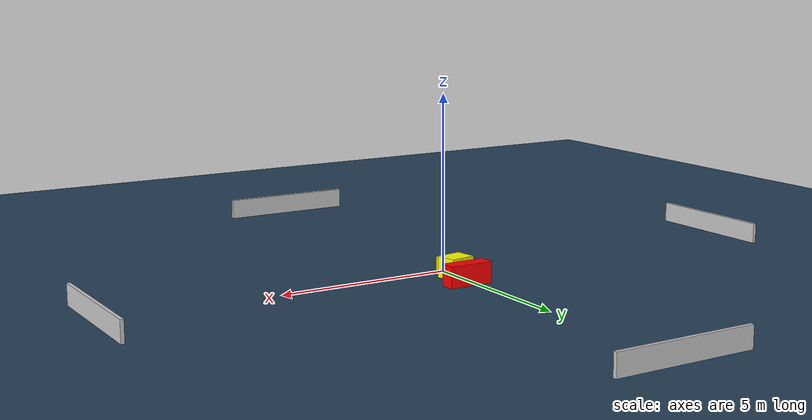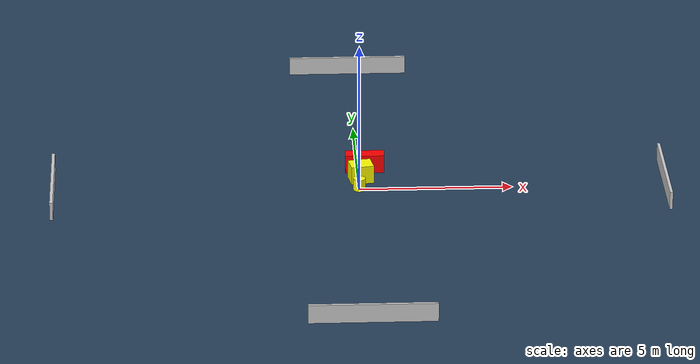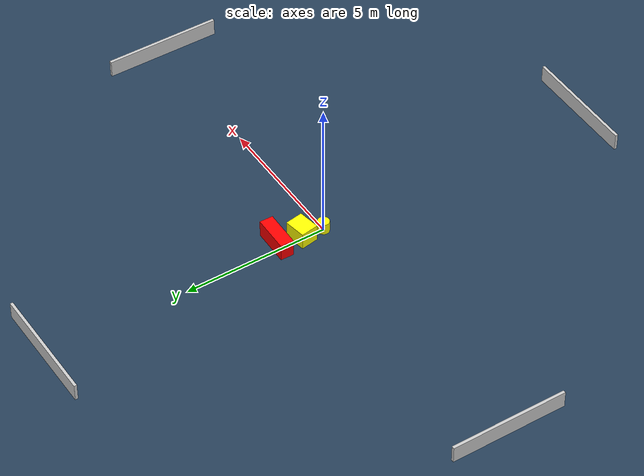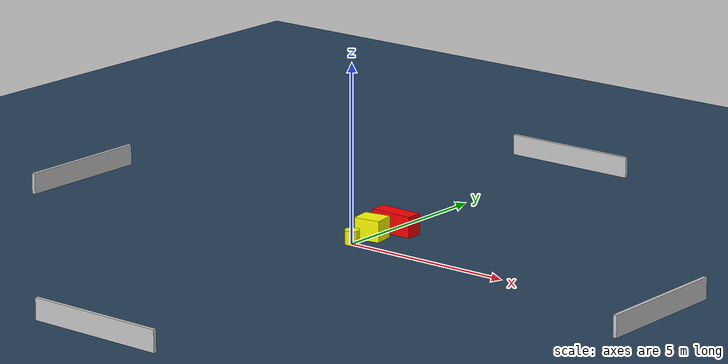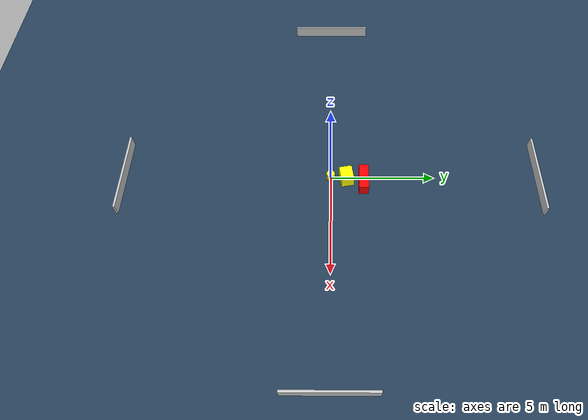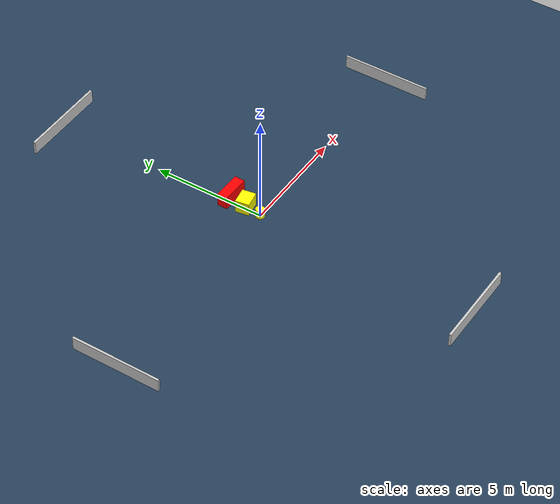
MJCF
<?xml version="1.0" ?>
<mujoco model="generated_environment">
  <option timestep="0.01" integrator="RK4" cone="elliptic"/>
  <default>
    <geom density="1"/>
  </default>
  <asset>
    <texture builtin="gradient" height="3072" name="skybox" rgb1="0.3 0.5 0.7" rgb2="0 0 0" type="skybox" width="512"/>
    <texture builtin="checker" height="300" name="groundplane" rgb1="0.2 0.3 0.4" rgb2="0.1 0.2 0.3" type="2d" width="300"/>
    <material name="groundplane" reflectance="0.2" texrepeat="5 5" texture="groundplane"/>
  </asset>
  <worldbody>
    <light dir="0 0 -1" directional="true" pos="0 0 1.5"/>
    <geom condim="3" friction="0.5 0.005 0.001" material="groundplane" name="floor" pos="0 0 0" size="0 0 0.05" type="plane"/>
    <body name="walls">
      <geom name="wall_1" condim="4" pos="-10.0 0.0 0.3" rgba="0.800000011920929 0.800000011920929 0.800000011920929 1.0" size="0.05 2.0 0.3" type="box"/>
      <geom name="wall_2" condim="4" pos="10.0 0.0 0.3" rgba="0.800000011920929 0.800000011920929 0.800000011920929 1.0" size="0.05 2.0 0.3" type="box"/>
      <geom name="wall_3" condim="4" pos="0.0 -10.0 0.3" rgba="0.800000011920929 0.800000011920929 0.800000011920929 1.0" size="2.0 0.05 0.3" type="box"/>
      <geom name="wall_4" condim="4" pos="0.0 10.0 0.3" rgba="0.800000011920929 0.800000011920929 0.800000011920929 1.0" size="2.0 0.05 0.3" type="box"/>
    </body>
    <body name="robot">
      <joint name="joint_x" type="slide" pos="0 0 0" axis="1 0 0"/>
      <joint name="joint_y" type="slide" pos="0 0 0" axis="0 1 0"/>
      <geom name="robot" type="cylinder" pos="0.0 0.0 0.2" size="0.2 0.2 0.0" mass="5.0" friction="1.0 0.005 0.0001" condim="4" rgba="1.0 1.0 0.0 1.0"/>
    </body>
    <body name="obstacle_1_movable">
      <geom name="obstacle_1_movable" condim="4" pos="0.07949340489800569 0.7583517973809376 0.3" euler="0 0 279.5399001411025" friction="0.0 0.005 0.001" rgba="1.0 1.0 0.0 1.0" size="0.3099800075021768 0.375728532039566 0.3" type="box" mass="0.1"/>
      <joint type="free"/>
    </body>
    <body name="obstacle_2_static">
      <geom name="obstacle_2_static" condim="4" pos="0.24222632779471734 1.5860790524644892 0.3" euler="0 0 358.9842845508248" friction="0.0 0.005 0.001" rgba="1.0 0.0 0.0 1.0" size="0.6413334089804268 0.2317204303914494 0.3" type="box"/>
    </body>
  </worldbody>
  <actuator>
    <motor name="actuator_x" joint="joint_x" gear="1" ctrlrange="-1 1"/>
    <motor name="actuator_y" joint="joint_y" gear="1" ctrlrange="-1 1"/>
  </actuator>
</mujoco>
